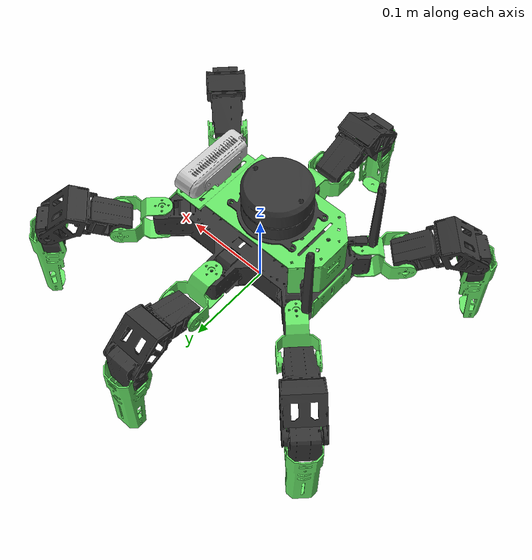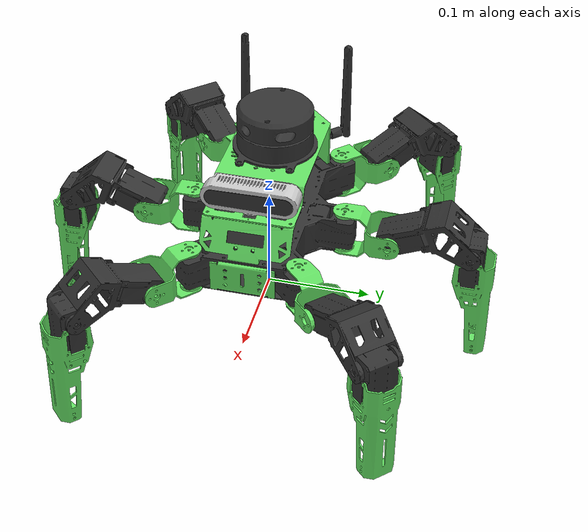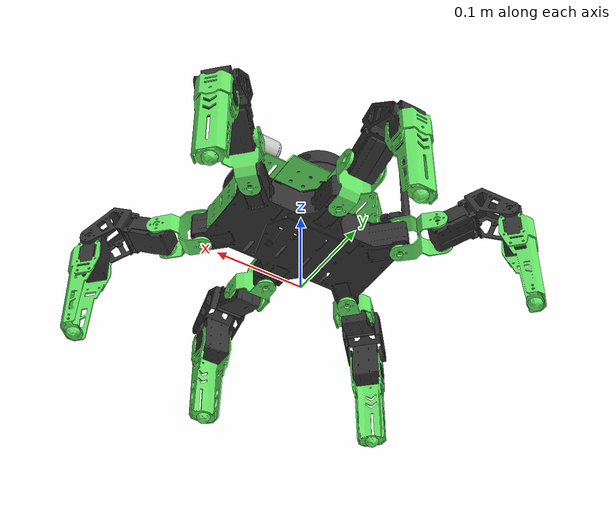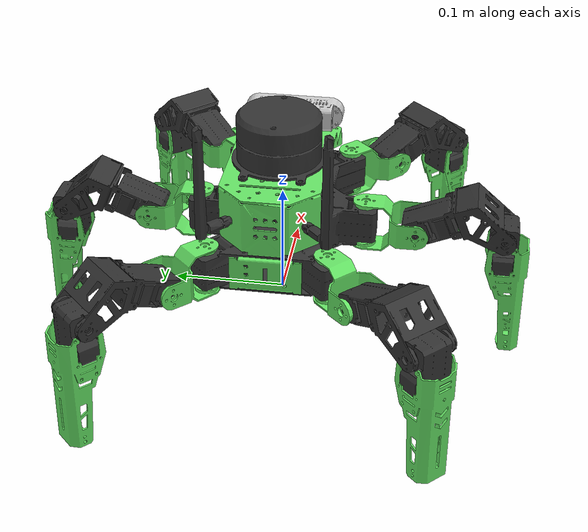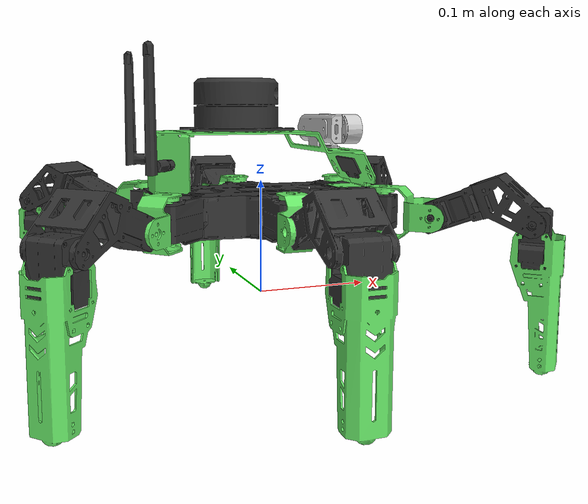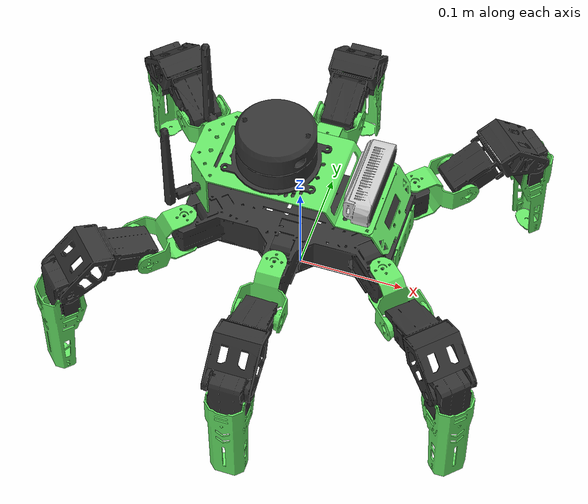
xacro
<?xml version="1.0"?>

<robot xmlns:xacro="http://www.ros.org/wiki/xacro" name="jethexa">
    <xacro:arg name="prefix" default="" />

    <!-- Import jethexa macro -->
    <xacro:include filename="$(find jethexa_description)/urdf/jethexa_description.urdf.xacro" />

    <!-- Import Rviz colors -->
    <xacro:include filename="$(find jethexa_description)/gazebo/jethexa.materials.xacro" />

    <!-- Import jethexa ros_control description -->
    <xacro:include filename="$(find jethexa_description)/gazebo/jethexa.gazebo.xacro" />
    <xacro:include filename="$(find jethexa_description)/gazebo/jethexa.transmission.xacro" />

    <!-- Used for fixing robot -->
    <link name="$(arg prefix)base_link"/>
    <gazebo reference="$(arg prefix)base_link">
        <static>true</static>
    </gazebo>

    <xacro:jethexa parent="$(arg prefix)base_link" prefix="$(arg prefix)">
        <origin xyz="0 0 0.075" rpy="0 0 0" />
    </xacro:jethexa>

    <xacro:jethexa_gazebo prefix="$(arg prefix)"></xacro:jethexa_gazebo>
    <xacro:jethexa_gazeboo_transmission prefix="$(arg prefix)"> </xacro:jethexa_gazeboo_transmission>

</robot>

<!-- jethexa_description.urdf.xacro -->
<robot xmlns:xacro="http://ros.org/wiki/xacro">
    <!-- parameters -->
    <xacro:property name="my_pi" value="3.1415926535897931"/>
    <xacro:property name="body_length_x" value="0.3556"/>
    <xacro:property name="body_length_y" value="0.165"/>
    <xacro:property name="coxa_length" value="0.04505032"/>
    <xacro:property name="femur_length" value="0.07703"/>

    <!-- Joint properties -->
    <xacro:property name="joint_lower_limit" value="-${3.14}" />
    <xacro:property name="joint_upper_limit" value="${3.14}" />
    <xacro:property name="joint_effort" value="6.0" />
    <xacro:property name="joint_velocity" value="0.524" />

    <!-- Leg macro -->
    <xacro:macro name="leg" params="prefix side position x y angle axis">
        <!-- leg position -->
        <joint name="${prefix}leg_center_joint_${side}${position}" type="fixed">
            <origin xyz="${x} ${y} 0.0" rpy="0.0 0.0 0.0" />
            <parent link="${prefix}body_link" />
            <child link="${prefix}leg_center_${side}${position}" />
        </joint>
        <link name="${prefix}leg_center_${side}${position}">
            <inertial>
                <origin xyz="0.0 0.0 0.0" rpy="0.0 0.0 0.0" />
                <mass value="0.00001"/>
                <inertia ixx="1.0" ixy="0.0" ixz="0.0" iyy="1.0" iyz="0.0" izz="1.0" />
            </inertial>
        </link>
        <!-- coxa -->
        <joint name="${prefix}coxa_joint_${side}${position}" type="revolute">
            <origin xyz="0.0 0.0 0.0" rpy="0.0 0.0 ${angle}" />
            <parent link="${prefix}leg_center_${side}${position}" />
            <child link="${prefix}coxa_${side}${position}" />
            <axis xyz="0.0 0.0 1.0" />
            <limit lower="${joint_lower_limit}" upper="${joint_upper_limit}" effort="${joint_effort}" velocity="${joint_velocity}" />
	    <dynamics damping="0.7" />
        </joint>
        <link name="${prefix}coxa_${side}${position}">
            <visual>
                <origin xyz="0.0 0.0 0.0" rpy="0.0 0.0 0.0"/>
                <geometry>
			<mesh filename="package://jethexa_description/meshes/simplify/coxa.stl" scale="0.001 0.001 0.001"/>
                </geometry>
                <material name="">
                    <color rgba="0.4 0.9 0.4 1" />
                </material>
            </visual>
            <collision>
                <origin xyz="0.0 0.0 0.0" rpy="0.0 0.0 0.0" />
                <geometry>
			<mesh filename="package://jethexa_description/meshes/simplify/coxa.stl" scale="0.001 0.001 0.001"/>
                </geometry>
            </collision>
            <inertial>
                <origin xyz="0.0 0.0 0.0" rpy="0.0 0.0 0.0" />
                <mass value="0.00001"/>
                <inertia ixx="1.0" ixy="0.0" ixz="0.0" iyy="1.0" iyz="0.0" izz="1.0" />
            </inertial>
        </link>
        <!-- femur -->
        <joint name="${prefix}femur_joint_${side}${position}" type="revolute">
            <origin xyz="${coxa_length} 0.0 0.0" rpy="${axis*my_pi/2} 0.0 0.0" />
            <parent link="${prefix}coxa_${side}${position}" />
            <child link="${prefix}femur_${side}${position}" />
            <axis xyz="0.0 0.0 ${axis}" />
            <limit lower="${joint_lower_limit}" upper="${joint_upper_limit}" effort="${joint_effort}" velocity="${joint_velocity}" />
	    <dynamics damping="0.7" />
        </joint>
        <link name="${prefix}femur_${side}${position}">
            <visual>
                <origin xyz="0.0 0.0 0.0" rpy="0.0 0.0 0.0"/>
                <geometry>
			<mesh filename="package://jethexa_description/meshes/simplify/${side}_femur.stl" scale="0.001 0.001 0.001"/>
                </geometry>
                <material name="">
                    <color rgba="0.2 0.2 0.2 1" />
                </material>
            </visual>
            <collision>
                <origin xyz="0.0 0.0 0.0" rpy="0.0 0.0 0" />
                <geometry>
			<mesh filename="package://jethexa_description/meshes/simplify/${side}_femur.stl" scale="0.001 0.001 0.001"/>
                </geometry>
                <material name="">
                    <color rgba="0.2 0.2 0.2 1" />
                </material>
            </collision>
            <inertial>
                <origin xyz="0.0 0.0 0.0" rpy="0.0 0.0 1.0" />
                <mass value="0.00001"/>
                <inertia ixx="1.0" ixy="0.0" ixz="0.0" iyy="1.0" iyz="0.0" izz="1.0" />
            </inertial>
        </link>

        <!-- tibia -->
        <joint name="${prefix}tibia_joint_${side}${position}" type="revolute">
		<origin xyz="${femur_length} 0.0 0.0" rpy="0.0 0.0 ${-axis*(my_pi/2 - 5*my_pi/180)}" />
            <parent link="${prefix}femur_${side}${position}" />
            <child link="${prefix}tibia_${side}${position}" />
            <axis xyz="0.0 0.0 ${axis}" />
            <limit lower="${joint_lower_limit}" upper="${joint_upper_limit}" effort="${joint_effort}" velocity="${joint_velocity}" />
	    <dynamics damping="0.7" />
        </joint>
        <link name="${prefix}tibia_${side}${position}">
            <visual>
		    <origin xyz="0.0 0.0 0.0" rpy="0.0 0.0 ${-axis*0.08727}"/>
                <geometry>
			<mesh filename="package://jethexa_description/meshes/simplify/${side}_tibia_b.stl" scale="0.001 0.001 0.001"/>
                </geometry>
                <material name="">
                    <color rgba="0.4 0.9 0.4 1" />
                </material>
            </visual>
            <visual>
		    <origin xyz="0.0 0.0 0.0" rpy="0.0 0.0 ${-axis*0.08727}"/>
                <geometry>
			<mesh filename="package://jethexa_description/meshes/simplify/${side}_tibia_a.stl" scale="0.001 0.001 0.001"/>
                </geometry>
                <material name="">
                    <color rgba="0.2 0.2 0.2 1" />
                </material>
            </visual>
            <collision>
		    <origin xyz="0.0 0.0 0.0" rpy="0.0 0.0 ${-axis*0.08727}"/>
                <geometry>
			<mesh filename="package://jethexa_description/meshes/simplify/${side}_tibia.stl" scale="0.001 0.001 0.001"/>
                </geometry>
            </collision>
            <inertial>
                <origin xyz="0.0 0.0 0.0" rpy="0.0 0.0 0.0" />
                <mass value="0.00001"/>
                <inertia ixx="1.0" ixy="0.0" ixz="0.0" iyy="1.0" iyz="0.0" izz="1.0" />
            </inertial>
        </link>
        <!-- END -->
        <joint name="${prefix}end_joint${side}${position}" type="fixed">
	    <origin xyz="0.123 0.0 0.0" rpy="0.0 0.0 0.0"/>
            <parent link="${prefix}tibia_${side}${position}" />
            <child link="${prefix}end_${side}${position}" />
            <axis xyz="0.0 0.0 0.0" />
        </joint>
        <link name="${prefix}end_${side}${position}">
        </link>
    </xacro:macro>

    <xacro:macro name="jethexa" params="prefix parent *origin">
        <joint name="${prefix}base_joint" type="fixed">
            <parent link="${parent}"/>
            <child link="${prefix}body_link" />
            <xacro:insert_block name="origin"/>
        </joint>
        <link name="${prefix}body_link">
            <visual>
	        <origin xyz="0.0 0.0 0.0" rpy="0.0 0.0 0.0" />
                <geometry>
			<mesh filename="package://jethexa_description/meshes/simplify/body_a.stl" scale="1.0 1.0 1.0"/>
                </geometry>
                <material name="">
                    <color rgba="0.2 0.2 0.2 1" />
                </material>
            </visual>
            <visual>
	        <origin xyz="0.0 0.0 0.0" rpy="0.0 0.0 0.0" />
                <geometry>
			<mesh filename="package://jethexa_description/meshes/simplify/body_b.stl" scale="1.0 1.0 1.0"/>
                </geometry>
                <material name="">
                    <color rgba="0.4 0.9 0.4 1" />
                </material>
            </visual>
            <collision>
		<origin xyz="0.0 0.0 0.0" rpy="0.0 0.0 0.0"/>
                <geometry>
			<mesh filename="package://jethexa_description/meshes/simplify/body.stl" scale="1.0 1.0 1.0"/>
                </geometry>
            </collision>
            <collision>
		<origin xyz="0.0 0.0 -0.0" rpy="0.0 0.0 0.0"/>
                <geometry>
			<mesh filename="package://jethexa_description/meshes/simplify/body_b.stl" scale="1.0 1.0 1.0"/>
                </geometry>
            </collision>
            <inertial>
                <origin xyz="0.0 0.0 0.0" rpy="0.0 0.0 0.0" />
                <mass value="0.00001"/>
                <inertia ixx="1.0" ixy="0.0" ixz="0.0" iyy="1.0" iyz="0.0" izz="1.0" />
            </inertial>
        </link>
	<joint name="${prefix}lidar_joint" type="fixed">
            <parent link="${prefix}body_link"/>
            <child link="${prefix}lidar_visual_link"/>
            <origin xyz="-0.023 0.0 0.1" rpy="0.0 0.0 0.0"/>
        </joint>

	<link name="${prefix}lidar_visual_link">
		<visual>
			<origin xyz="0.0 0.0 -0.033" rpy="0.0 0.0 1.571" />
			<geometry>
				<mesh filename="package://jethexa_description/meshes/simplify/g4.stl" scale="1.0 1.0 1.0"/>
			</geometry>
			<material name="">
                    		<color rgba="0.2 0.2 0.2 1" />
			</material>
		</visual>
		<collision>
			<origin xyz="0.0 0.0 -0.033" rpy="0.0 0.0 1.571" />
			<geometry>
				<mesh filename="package://jethexa_description/meshes/simplify/g4.stl" scale="1.0 1.0 1.0"/>
			</geometry>
			<material name="">
                    		<color rgba="0.2 0.2 0.2 1" />
			</material>
		</collision>
		<inertial>
			<origin xyz="0.0 0.0 0.0" rpy="0.0 0.0 0.0" />
			<mass value="0.00001"/>
			<inertia ixx="1.0" ixy="0.0" ixz="0.0" iyy="1.0" iyz="0.0" izz="1.0" />
		</inertial>
	</link>

        <!-- Depth camera properties -->
        <joint name="${prefix}depth_camera_joint" type="fixed">
            <parent link="${prefix}body_link"/>
            <child link="${prefix}depth_camera_link"/>
            <origin xyz="0.062455 0.0 0.07" rpy="0.0 0.0 0.0"/>
        </joint>
        <link name="${prefix}depth_camera_link">
		<visual>
			<origin xyz="0.0 0.0 -0.015" rpy="0.0 0.0 ${my_pi/2}" />
			<geometry>
				<mesh filename="package://jethexa_description/meshes/simplify/dabai.stl" scale="1.0 1.0 1.0"/>
			</geometry>
			<material name="">
				<color rgba="0.8 0.8 0.8 1" />
			</material>
		</visual>
		<visual>
			<origin xyz="0.0105 0.0 -0.025" rpy="0.0 0.0 ${my_pi/2}" />
			<geometry>
				<mesh filename="package://jethexa_description/meshes/simplify/dabai_len.stl" scale="1.0 1.0 1.0"/>
			</geometry>
			<material name="">
				<color rgba="0.2 0.2 0.2 1" />
			</material>
		</visual>
		<collision>
			<origin xyz="0.0 0.0 -0.015" rpy="0.0 0.0 ${my_pi/2}" />
			<geometry>
				<mesh filename="package://jethexa_description/meshes/simplify/dabai.stl" scale="1.0 1.0 1.0"/>
			</geometry>
			<material name="">
				<color rgba="0.8 0.8 0.8 1"/>
			</material>
		</collision>
		<inertial>
			<origin xyz="0.0 0.0 0.0" rpy="0.0 0.0 0.0" />
			<mass value="0.00001"/>
			<inertia ixx="1.0" ixy="0.0" ixz="0.0" iyy="1.0" iyz="0.0" izz="1.0" />
		</inertial>
	</link>
	<joint name="${prefix}head_pan_joint" type="revolute">
		<parent link="${prefix}body_link"/>
		<child link="${prefix}head_pan_link"/>
		<axis xyz="0.0 0.0 1.0" />
		<origin xyz="0.0 0.0 0.0" rpy="0.0 0.0 0.0"/>
		<limit lower="-3.14" upper="3.14" effort="10000" velocity="100" />
	</joint>
	<link name="${prefix}head_pan_link">
	</link>
	<joint name="${prefix}head_tilt_joint" type="revolute">
		<parent link="${prefix}head_pan_link"/>
		<child link="${prefix}head_tilt_link"/>
		<axis xyz="0.0 0.0 1.0" />
		<origin xyz="0.0 0.0 0.0" rpy="0.0 0.0 0.0"/>
		<limit lower="-3.14" upper="3.14" effort="10000" velocity="100" />
	</joint>
	<link name="${prefix}head_tilt_link">
	</link>

        <xacro:leg prefix="${prefix}" side="R" position="R" x="-0.093205" y="-0.05098" angle="-${my_pi*3/4}" axis="1" />
        <xacro:leg prefix="${prefix}" side="R" position="M" x="0.0" y="-0.073535" angle="-${my_pi/2}" axis="1" />
        <xacro:leg prefix="${prefix}" side="R" position="F" x="0.093205" y="-0.05098" angle="-${my_pi/4}" axis="1" />
        <xacro:leg prefix="${prefix}" side="L" position="R" x="-0.093205" y="0.05098" angle="${my_pi*3/4}" axis="-1" />
        <xacro:leg prefix="${prefix}" side="L" position="M" x="0.0" y="0.07353" angle="${my_pi/2}" axis="-1" />
        <xacro:leg prefix="${prefix}" side="L" position="F" x="0.093205" y="0.05098" angle="${my_pi/4}" axis="-1" />
    </xacro:macro>
</robot>

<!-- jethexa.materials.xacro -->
<robot>

    <material name="black">
        <color rgba="0.0 0.0 0.0 1.0"/>
    </material>

    <material name="blue">
        <color rgba="0.0 0.0 0.8 1.0"/>
    </material>

    <material name="green">
        <color rgba="0.0 0.8 0.0 1.0"/>
    </material>

    <material name="grey">
        <color rgba="0.2 0.2 0.2 1.0"/>
    </material>

    <material name="orange">
        <color rgba="${255/255} ${108/255} ${10/255} 1.0"/>
    </material>

    <material name="brown">
        <color rgba="${222/255} ${207/255} ${195/255} 1.0"/>
    </material>

    <material name="red">
        <color rgba="0.8 0.0 0.0 1.0"/>
    </material>

    <material name="yellow">
        <color rgba="1.0 1.0 0.0 1.0"/>
    </material>

    <material name="white">
        <color rgba="1.0 1.0 1.0 1.0"/>
    </material>

</robot>
